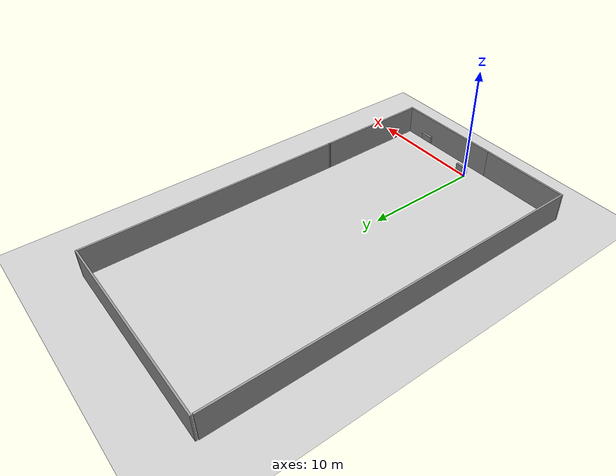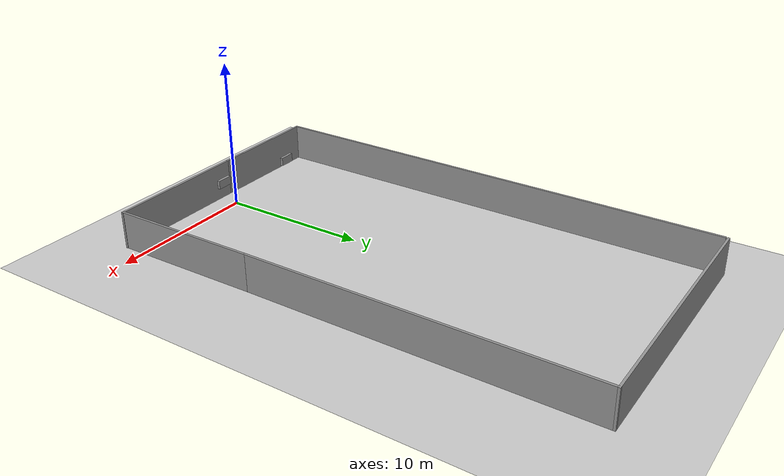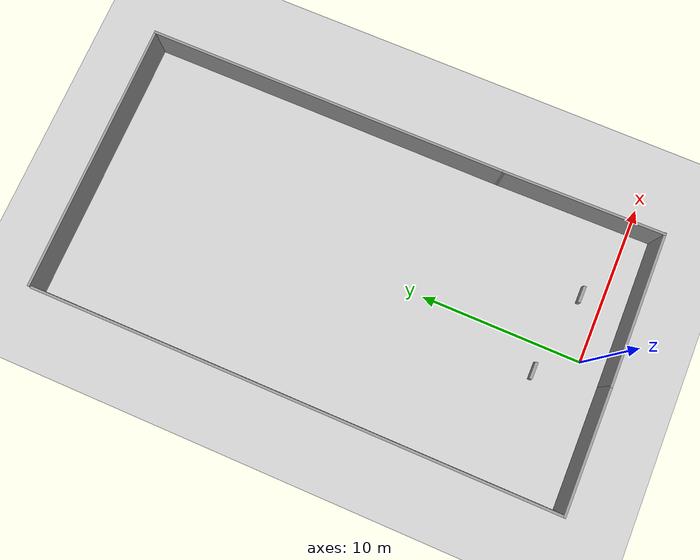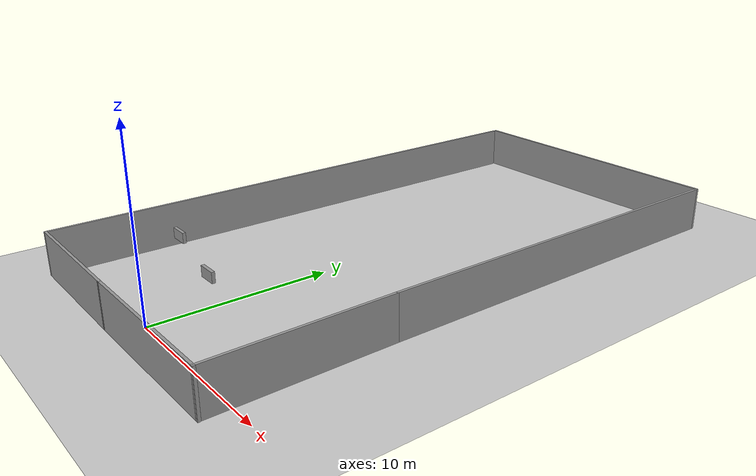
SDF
<sdf version="1.6">
 <world name="default">
  <light name="sun" type="directional">
   <pose>0 0 10 0 -0 0</pose>
   <diffuse>0.8 0.8 0.8 1</diffuse>
   <specular>0.2 0.2 0.2 1</specular>
   <attenuation>
    <range>1000</range>
    <constant>0.9</constant>
    <linear>0.01</linear>
    <quadratic>0.001</quadratic>
   </attenuation>
   <direction>-0.5 0.1 -0.9</direction>
  </light>
  <model name="ground_plane">
   <static>1</static>
   <link name="link">
    <collision name="collision">
     <geometry><plane><normal>0 0 1</normal><size>100 100</size></plane></geometry>
     <surface>
      <contact><collide_bitmask>65535</collide_bitmask></contact>
      <friction><ode><mu>100</mu><mu2>50</mu2></ode></friction>
     </surface>
    </collision>
    <visual name="visual">
     <cast_shadows>0</cast_shadows>
     <geometry><plane><normal>0 0 1</normal><size>100 100</size></plane></geometry>
     <material>
      <script><uri>file://media/materials/scripts/gazebo.material</uri><name>Gazebo/Grey</name></script>
     </material>
    </visual>
   </link>
  </model>
  <gravity>0 0 -9.8</gravity>
  <magnetic_field>6e-06 2.3e-05 -4.2e-05</magnetic_field>
  <atmosphere type="adiabatic"/>
  <physics name="default_physics" default="0" type="ode">
   <max_step_size>0.001</max_step_size>
   <real_time_factor>1</real_time_factor>
   <real_time_update_rate>1000</real_time_update_rate>
  </physics>
  <scene><ambient>0.4 0.4 0.4 1</ambient><background>0.7 0.7 0.7 1</background><shadows>1</shadows></scene>
  <audio><device>default</device></audio>
  <spherical_coordinates>
   <surface_model>EARTH_WGS84</surface_model>
   <latitude_deg>0</latitude_deg>
   <longitude_deg>0</longitude_deg>
   <elevation>0</elevation>
   <heading_deg>0</heading_deg>
  </spherical_coordinates>
  <model name="window.world">
   <pose>-0.061201 14.7738 0 0 -0 0</pose>
   <link name="Wall_12">
    <collision name="Wall_12_Collision">
     <geometry><box><size>7.75 0.15 2.5</size></box></geometry>
     <pose>0 0 1.25 0 -0 0</pose>
    </collision>
    <visual name="Wall_12_Visual">
     <pose>0 0 1.25 0 -0 0</pose>
     <geometry><box><size>7.75 0.15 2.5</size></box></geometry>
     <material>
      <script><uri>file://media/materials/scripts/gazebo.material</uri><name>Gazebo/Grey</name></script>
      <ambient>1 1 1 1</ambient>
     </material>
     <meta><layer>0</layer></meta>
    </visual>
    <pose>-4.71864 -16.2872 0 0 -0 3.14159</pose>
   </link>
   <link name="Wall_15">
    <collision name="Wall_15_Collision">
     <geometry><box><size>32.5 0.15 2.5</size></box></geometry>
     <pose>0 0 1.25 0 -0 0</pose>
    </collision>
    <visual name="Wall_15_Visual">
     <pose>0 0 1.25 0 -0 0</pose>
     <geometry><box><size>32.5 0.15 2.5</size></box></geometry>
     <material>
      <script><uri>file://media/materials/scripts/gazebo.material</uri><name>Gazebo/Grey</name></script>
      <ambient>1 1 1 1</ambient>
     </material>
     <meta><layer>0</layer></meta>
    </visual>
    <pose>-8.51864 -0.112244 0 0 -0 1.5708</pose>
   </link>
   <link name="Wall_17">
    <collision name="Wall_17_Collision">
     <geometry><box><size>22.75 0.15 2.5</size></box></geometry>
     <pose>0 0 1.25 0 -0 0</pose>
    </collision>
    <visual name="Wall_17_Visual">
     <pose>0 0 1.25 0 -0 0</pose>
     <geometry><box><size>22.75 0.15 2.5</size></box></geometry>
     <material>
      <script><uri>file://media/materials/scripts/gazebo.material</uri><name>Gazebo/Grey</name></script>
      <ambient>1 1 1 1</ambient>
     </material>
     <meta><layer>0</layer></meta>
    </visual>
    <pose>8.37754 4.98781 0 0 -0 1.5708</pose>
   </link>
   <link name="Wall_18">
    <collision name="Wall_18_Collision">
     <geometry><box><size>17 0.15 2.5</size></box></geometry>
     <pose>0 0 1.25 0 -0 0</pose>
    </collision>
    <visual name="Wall_18_Visual">
     <pose>0 0 1.25 0 -0 0</pose>
     <geometry><box><size>17 0.15 2.5</size></box></geometry>
     <material>
      <script><uri>file://media/materials/scripts/gazebo.material</uri><name>Gazebo/Grey</name></script>
      <ambient>1 1 1 1</ambient>
     </material>
     <meta><layer>0</layer></meta>
    </visual>
    <pose>-0.047458 16.2878 0 0 -0 3.14159</pose>
   </link>
   <link name="Wall_7">
    <collision name="Wall_7_Collision">
     <geometry><box><size>10.0543 0.15 2.5</size></box></geometry>
     <pose>0 0 1.25 0 -0 0</pose>
    </collision>
    <visual name="Wall_7_Visual">
     <pose>0 0 1.25 0 -0 0</pose>
     <geometry><box><size>10.0543 0.15 2.5</size></box></geometry>
     <material>
      <script><uri>file://media/materials/scripts/gazebo.material</uri><name>Gazebo/Grey</name></script>
      <ambient>1 1 1 1</ambient>
     </material>
     <meta><layer>0</layer></meta>
    </visual>
    <pose>8.43458 -11.2636 0 0 -0 1.58232</pose>
   </link>
   <link name="Wall_9">
    <collision name="Wall_9_Collision">
     <geometry><box><size>9.58699 0.15 2.5</size></box></geometry>
     <pose>0 0 1.25 0 -0 0</pose>
    </collision>
    <visual name="Wall_9_Visual">
     <pose>0 0 1.25 0 -0 0</pose>
     <geometry><box><size>9.58699 0.15 2.5</size></box></geometry>
     <material>
      <script><uri>file://media/materials/scripts/gazebo.material</uri><name>Gazebo/Grey</name></script>
      <ambient>1 1 1 1</ambient>
     </material>
     <meta><layer>0</layer></meta>
    </visual>
    <pose>3.79971 -16.2512 0 0 -0 -3.13395</pose>
   </link>
   <link name="Window_0">
    <collision name="Window_0_Collision">
     <geometry><box><size>1 0.17 0.55</size></box></geometry>
     <pose>0 0 0.275 0 -0 0</pose>
    </collision>
    <visual name="Window_0_Visual">
     <pose>0 0 0.275 0 -0 0</pose>
     <geometry><box><size>1 0.17 0.55</size></box></geometry>
     <material>
      <script><uri>file://media/materials/scripts/gazebo.material</uri><name>Gazebo/Grey</name></script>
     </material>
    </visual>
    <pose>3.0612 -12.7738 3 0 -0 0</pose>
   </link>
   <link name="Window_1">
    <collision name="Window_1_Collision">
     <geometry><box><size>1 0.17 0.55</size></box></geometry>
     <pose>0 0 0.275 0 -0 0</pose>
    </collision>
    <visual name="Window_1_Visual">
     <pose>0 0 0.275 0 -0 0</pose>
     <geometry><box><size>1 0.17 0.55</size></box></geometry>
     <material>
      <script><uri>file://media/materials/scripts/gazebo.material</uri><name>Gazebo/Grey</name></script>
     </material>
    </visual>
    <pose>-1.9388 -11.7738 3 0 -0 0</pose>
   </link>
   <static>1</static>
  </model>
 </world>
</sdf>
